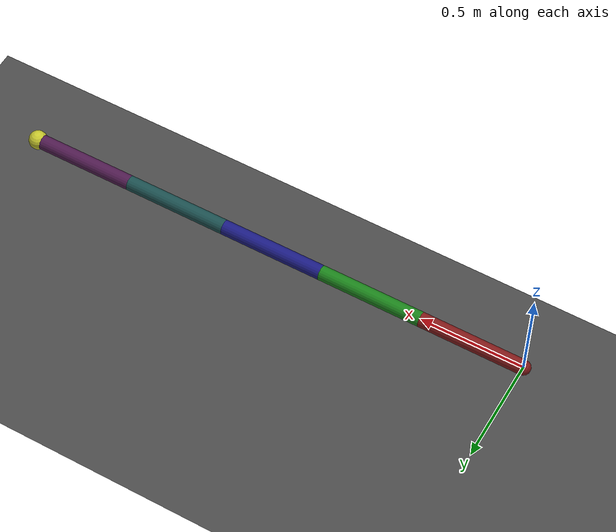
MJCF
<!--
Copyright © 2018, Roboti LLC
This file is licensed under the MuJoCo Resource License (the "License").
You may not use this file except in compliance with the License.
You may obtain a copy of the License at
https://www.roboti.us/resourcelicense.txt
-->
<mujoco model="plane arm">

    <option timestep="0.005" iterations="50" solver="Newton" tolerance="1e-10"/>

    <visual>
        <rgba haze=".3 .3 .3 1"/>
    </visual>

    <default>
        <joint type="hinge" pos="0 0 0" axis="0 0 1" damping="10.0"/>
    </default>

    <asset>
        <texture type="skybox" builtin="gradient" rgb1="0.6 0.6 0.6" rgb2="0 0 0" width="512" height="512"/>

        <texture name="texplane" type="2d" builtin="checker" rgb1=".25 .25 .25" rgb2=".3 .3 .3" width="512" height="512" mark="cross" markrgb=".8 .8 .8"/>

        <material name="matplane" reflectance="0.3" texture="texplane" texrepeat="1 1" texuniform="true"/>
    </asset>

    <worldbody>
        <geom name="floor" pos="0 0 -0.5" size="0 0 1" type="plane" material="matplane"/>

        <light directional="true" diffuse=".8 .8 .8" specular=".2 .2 .2" pos="0 0 5" dir="0 0 -1" />

        <body name="link0" pos="0 0 0">
            <geom name="link0" type="capsule" size="0.035" fromto="0 0 0  0.5 0 0" rgba=".5 .1 .1 1" group="1" contype="2" conaffinity="2"/>
            <joint name="joint0"/>

            <body name="link1" pos="0.5 0 0">
                <geom name="link1" type="capsule" size="0.035" fromto="0 0 0  0.5 0 0" rgba=".1 .5 .1 1" group="1" contype="4" conaffinity="4"/>
                <joint name="joint1"/>
                <body name="link2" pos="0.5 0 0">
                    <geom name="link2" type="capsule" size="0.035" fromto="0 0 0  0.5 0 0" rgba=".1 .1 .5 1" group="1" contype="8" conaffinity="8"/>
                    <joint name="joint2"/>
                    <body name="link3" pos="0.5 0 0">
                        <geom name="link3" type="capsule" size="0.035" fromto="0 0 0  0.5 0 0" rgba=".1 .3 .3 1" group="1" contype="16" conaffinity="16"/>
                        <joint name="joint3"/>
                        <body name="link4" pos="0.5 0 0">
                            <geom name="link4" type="capsule" size="0.035" fromto="0 0 0  0.5 0 0" rgba=".3 .1 .3 1" group="1" contype="32" conaffinity="32"/>
                            <joint name="joint4"/>
                            <body name="EE" pos="0.5 0 0">
                                <geom name="EE" type="sphere" size="0.045" rgba=".76 .76 .17 1" group="1"/>
                            </body>
                        </body>
                    </body>
                </body>
            </body>
        </body>
    </worldbody>

    <actuator>
        <motor name="joint0_motor" joint="joint0"/>
        <motor name="joint1_motor" joint="joint1"/>
        <motor name="joint2_motor" joint="joint2"/>
        <motor name="joint3_motor" joint="joint3"/>
        <motor name="joint4_motor" joint="joint4"/>

    </actuator>
</mujoco>
